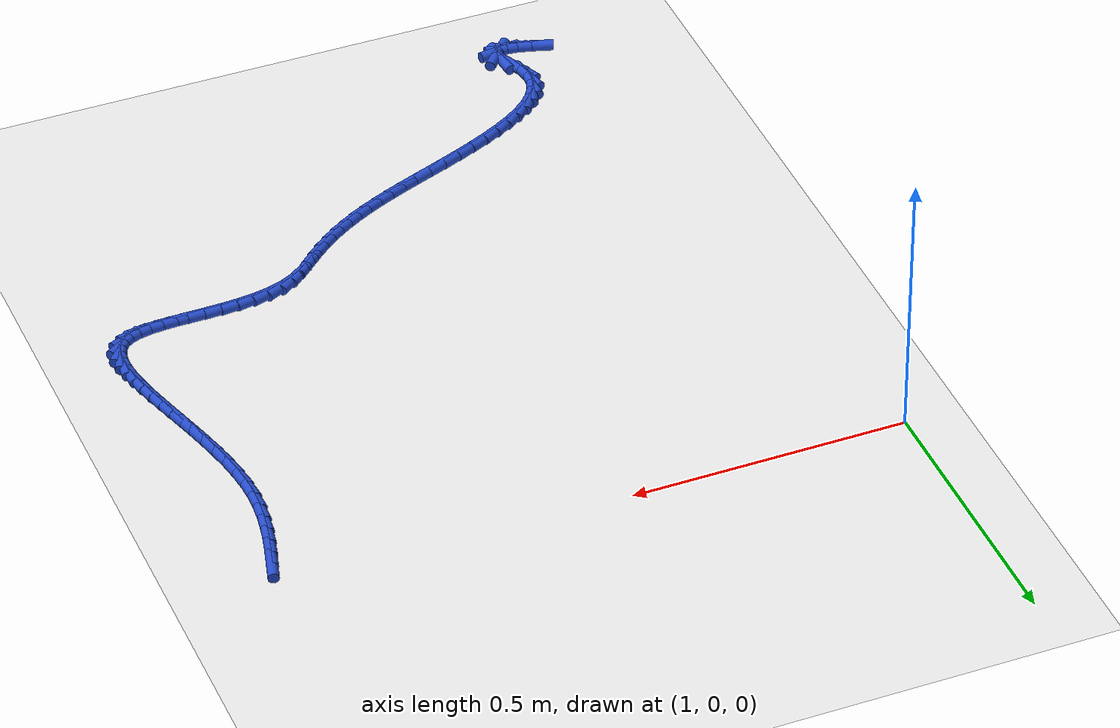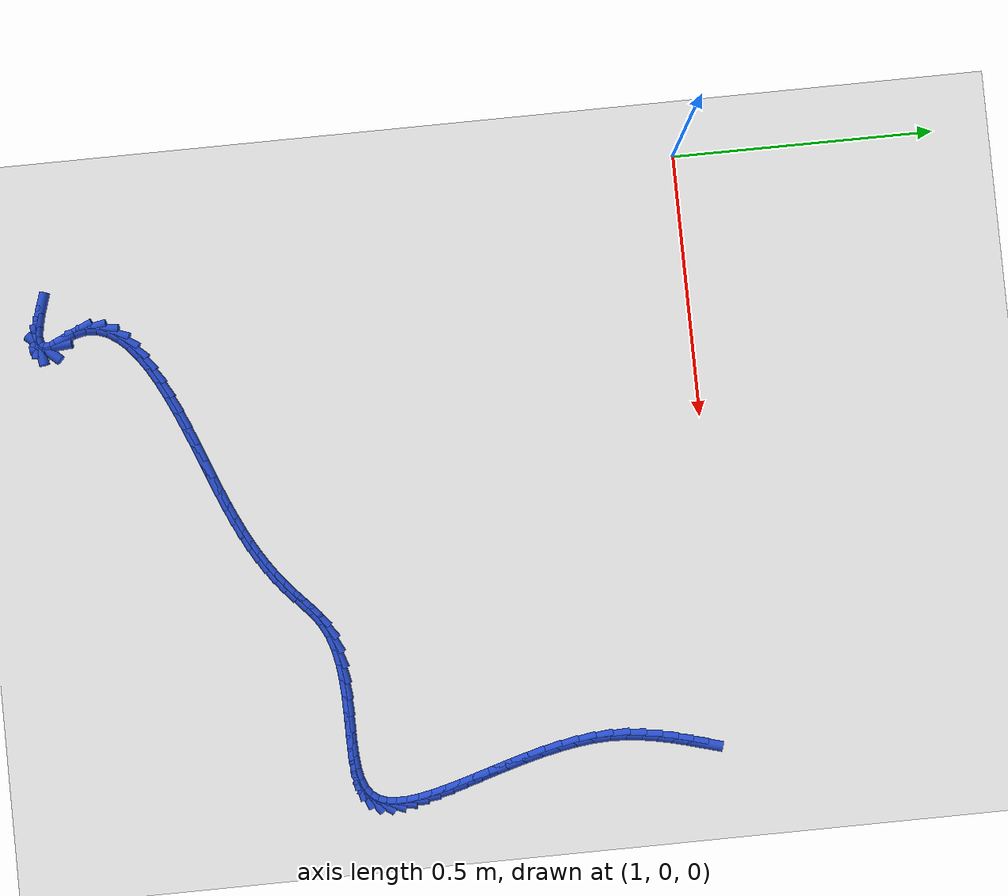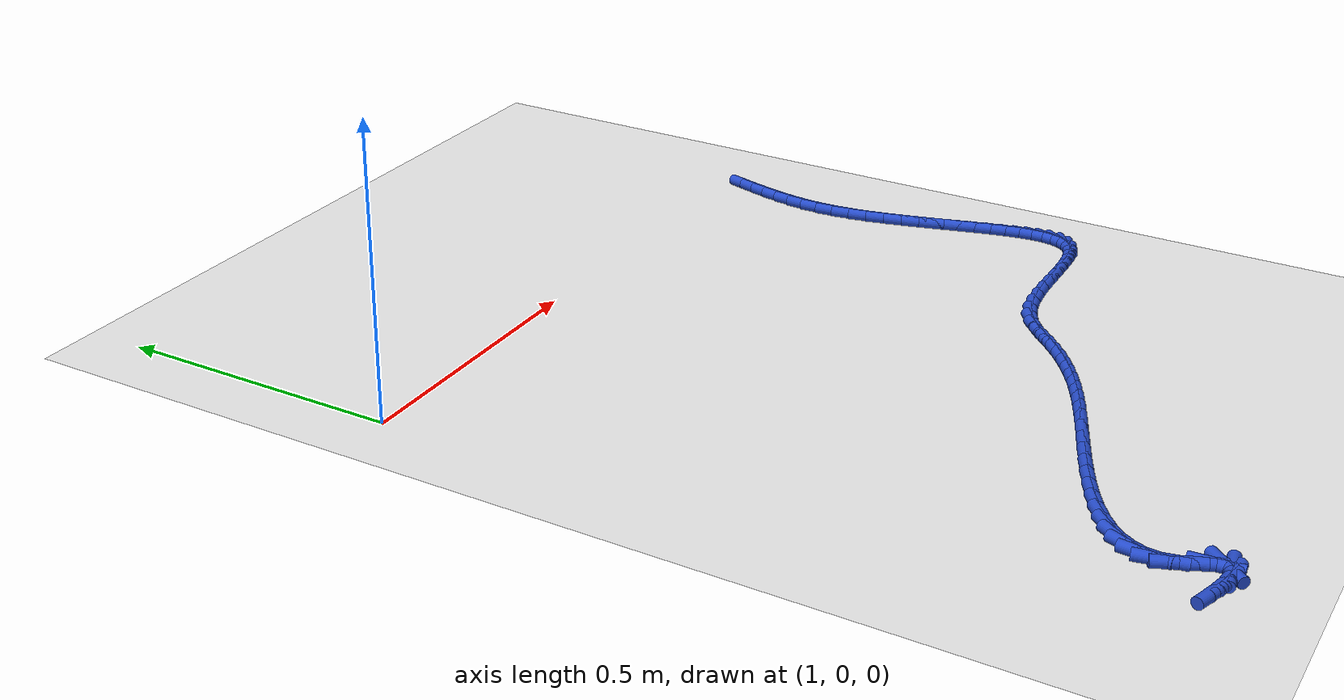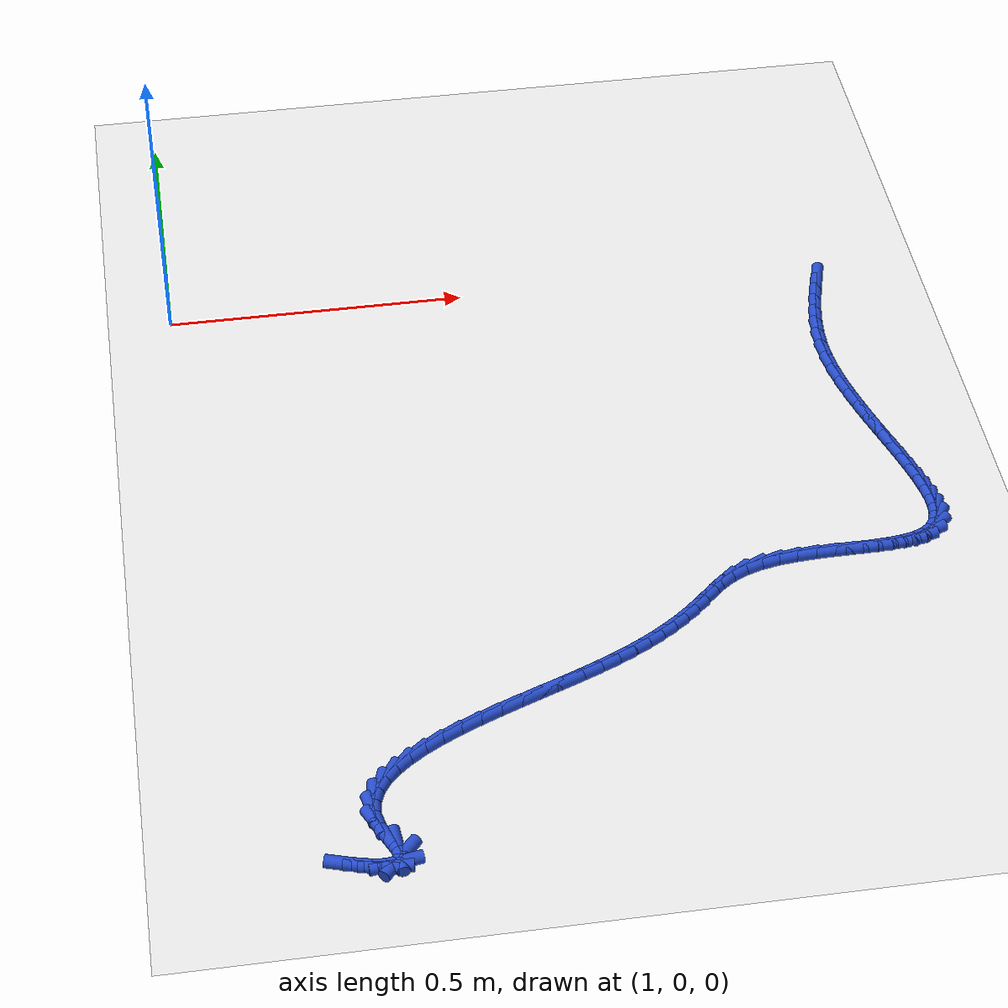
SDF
<sdf version="1.6">
 <world name="default">
  <model name="ground_plane">
   <static>1</static>
   <link name="link">
    <collision name="collision">
     <geometry><plane><normal>0 0 1</normal><size>100 100</size></plane></geometry>
     <surface><friction><ode><mu>100</mu><mu2>50</mu2></ode></friction></surface>
    </collision>
    <visual name="visual">
     <cast_shadows>0</cast_shadows>
     <geometry><plane><normal>0 0 1</normal><size>100 100</size></plane></geometry>
     <material>
      <script><uri>file://media/materials/scripts/gazebo.material</uri><name>Gazebo/WhiteGlow</name></script>
     </material>
    </visual>
   </link>
  </model>
  <model name="line">
   <link name="link_138">
    <pose>2.1176904225942463 -0.05944161366832139 0.01 0 1.57 1.296075081040833</pose>
    <collision name="collision">
     <geometry><cylinder><radius>0.01</radius><length>0.08</length></cylinder></geometry>
    </collision>
    <visual name="visual">
     <material>
      <script><name>Gazebo/Blue</name><uri>file://media/materials/scripts/gazebo.material</uri></script>
     </material>
     <geometry><cylinder><radius>0.01</radius><length>0.08</length></cylinder></geometry>
    </visual>
   </link>
   <link name="link_139">
    <pose>2.1100414255656452 -0.0865803740576701 0.01 0 1.57 1.320360415616173</pose>
    <collision name="collision">
     <geometry><cylinder><radius>0.01</radius><length>0.08</length></cylinder></geometry>
    </collision>
    <visual name="visual">
     <material>
      <script><name>Gazebo/Blue</name><uri>file://media/materials/scripts/gazebo.material</uri></script>
     </material>
     <geometry><cylinder><radius>0.01</radius><length>0.08</length></cylinder></geometry>
    </visual>
   </link>
   <link name="link_140">
    <pose>2.102938891639679 -0.11434565496982979 0.01 0 1.57 1.3570964571755493</pose>
    <collision name="collision">
     <geometry><cylinder><radius>0.01</radius><length>0.08</length></cylinder></geometry>
    </collision>
    <visual name="visual">
     <material>
      <script><name>Gazebo/Blue</name><uri>file://media/materials/scripts/gazebo.material</uri></script>
     </material>
     <geometry><cylinder><radius>0.01</radius><length>0.08</length></cylinder></geometry>
    </visual>
   </link>
   <link name="link_141">
    <pose>2.0967694082417 -0.1427746895620174 0.01 0 1.57 1.4058199411231167</pose>
    <collision name="collision">
     <geometry><cylinder><radius>0.01</radius><length>0.08</length></cylinder></geometry>
    </collision>
    <visual name="visual">
     <material>
      <script><name>Gazebo/Blue</name><uri>file://media/materials/scripts/gazebo.material</uri></script>
     </material>
     <geometry><cylinder><radius>0.01</radius><length>0.08</length></cylinder></geometry>
    </visual>
   </link>
   <link name="link_142">
    <pose>2.091919562797061 -0.17190471099145102 0.01 0 1.57 1.4659328105321343</pose>
    <collision name="collision">
     <geometry><cylinder><radius>0.01</radius><length>0.08</length></cylinder></geometry>
    </collision>
    <visual name="visual">
     <material>
      <script><name>Gazebo/Blue</name><uri>file://media/materials/scripts/gazebo.material</uri></script>
     </material>
     <geometry><cylinder><radius>0.01</radius><length>0.08</length></cylinder></geometry>
    </visual>
   </link>
   <link name="link_143">
    <pose>2.0887759427311114 -0.20177295241534834 0.01 0 1.57 1.5365186167617595</pose>
    <collision name="collision">
     <geometry><cylinder><radius>0.01</radius><length>0.08</length></cylinder></geometry>
    </collision>
    <visual name="visual">
     <material>
      <script><name>Gazebo/Blue</name><uri>file://media/materials/scripts/gazebo.material</uri></script>
     </material>
     <geometry><cylinder><radius>0.01</radius><length>0.08</length></cylinder></geometry>
    </visual>
   </link>
   <link name="link_144">
    <pose>2.087725135469206 -0.2324166469909274 0.01 0 1.57 -1.5265983619880603</pose>
    <collision name="collision">
     <geometry><cylinder><radius>0.01</radius><length>0.08</length></cylinder></geometry>
    </collision>
    <visual name="visual">
     <material>
      <script><name>Gazebo/Blue</name><uri>file://media/materials/scripts/gazebo.material</uri></script>
     </material>
     <geometry><cylinder><radius>0.01</radius><length>0.08</length></cylinder></geometry>
    </visual>
   </link>
   <link name="link_145">
    <pose>2.089115758651835 -0.263859668446599 0.01 0 1.57 -1.455170624955548</pose>
    <collision name="collision">
     <geometry><cylinder><radius>0.01</radius><length>0.08</length></cylinder></geometry>
    </collision>
    <visual name="visual">
     <material>
      <script><name>Gazebo/Blue</name><uri>file://media/materials/scripts/gazebo.material</uri></script>
     </material>
     <geometry><cylinder><radius>0.01</radius><length>0.08</length></cylinder></geometry>
    </visual>
   </link>
   <link name="link_146">
    <pose>2.0928448240829454 -0.29596699585165764 0.01 0 1.57 -1.3982941410885101</pose>
    <collision name="collision">
     <geometry><cylinder><radius>0.01</radius><length>0.08</length></cylinder></geometry>
    </collision>
    <visual name="visual">
     <material>
      <script><name>Gazebo/Blue</name><uri>file://media/materials/scripts/gazebo.material</uri></script>
     </material>
     <geometry><cylinder><radius>0.01</radius><length>0.08</length></cylinder></geometry>
    </visual>
   </link>
   <link name="link_147">
    <pose>2.098513063847713 -0.3284993641290458 0.01 0 1.57 -1.3540888738944732</pose>
    <collision name="collision">
     <geometry><cylinder><radius>0.01</radius><length>0.08</length></cylinder></geometry>
    </collision>
    <visual name="visual">
     <material>
      <script><name>Gazebo/Blue</name><uri>file://media/materials/scripts/gazebo.material</uri></script>
     </material>
     <geometry><cylinder><radius>0.01</radius><length>0.08</length></cylinder></geometry>
    </visual>
   </link>
   <link name="link_148">
    <pose>2.1057160461594213 -0.36121569132602255 0.01 0 1.57 -1.3209679672734795</pose>
    <collision name="collision">
     <geometry><cylinder><radius>0.01</radius><length>0.08</length></cylinder></geometry>
    </collision>
    <visual name="visual">
     <material>
      <script><name>Gazebo/Blue</name><uri>file://media/materials/scripts/gazebo.material</uri></script>
     </material>
     <geometry><cylinder><radius>0.01</radius><length>0.08</length></cylinder></geometry>
    </visual>
   </link>
   <link name="link_149">
    <pose>2.1140493392313555 -0.39387489548984617 0.01 0 1.57 -1.2978422901081454</pose>
    <collision name="collision">
     <geometry><cylinder><radius>0.01</radius><length>0.08</length></cylinder></geometry>
    </collision>
    <visual name="visual">
     <material>
      <script><name>Gazebo/Blue</name><uri>file://media/materials/scripts/gazebo.material</uri></script>
     </material>
     <geometry><cylinder><radius>0.01</radius><length>0.08</length></cylinder></geometry>
    </visual>
   </link>
   <link name="link_150">
    <pose>2.1231085112767993 -0.4262358946677752 0.01 0 1.57 -1.2841291633216976</pose>
    <collision name="collision">
     <geometry><cylinder><radius>0.01</radius><length>0.08</length></cylinder></geometry>
    </collision>
    <visual name="visual">
     <material>
      <script><name>Gazebo/Blue</name><uri>file://media/materials/scripts/gazebo.material</uri></script>
     </material>
     <geometry><cylinder><radius>0.01</radius><length>0.08</length></cylinder></geometry>
    </visual>
   </link>
   <link name="link_151">
    <pose>2.132489130509036 -0.4580576069070675 0.01 0 1.57 -1.279776070728795</pose>
    <collision name="collision">
     <geometry><cylinder><radius>0.01</radius><length>0.08</length></cylinder></geometry>
    </collision>
    <visual name="visual">
     <material>
      <script><name>Gazebo/Blue</name><uri>file://media/materials/scripts/gazebo.material</uri></script>
     </material>
     <geometry><cylinder><radius>0.01</radius><length>0.08</length></cylinder></geometry>
    </visual>
   </link>
   <link name="link_152">
    <pose>2.1417867651413514 -0.4890989502549815 0.01 0 1.57 -1.2853324727641589</pose>
    <collision name="collision">
     <geometry><cylinder><radius>0.01</radius><length>0.08</length></cylinder></geometry>
    </collision>
    <visual name="visual">
     <material>
      <script><name>Gazebo/Blue</name><uri>file://media/materials/scripts/gazebo.material</uri></script>
     </material>
     <geometry><cylinder><radius>0.01</radius><length>0.08</length></cylinder></geometry>
    </visual>
   </link>
   <link name="link_153">
    <pose>2.150596983387028 -0.5191188427587754 0.01 0 1.57 -1.3021037482972861</pose>
    <collision name="collision">
     <geometry><cylinder><radius>0.01</radius><length>0.08</length></cylinder></geometry>
    </collision>
    <visual name="visual">
     <material>
      <script><name>Gazebo/Blue</name><uri>file://media/materials/scripts/gazebo.material</uri></script>
     </material>
     <geometry><cylinder><radius>0.01</radius><length>0.08</length></cylinder></geometry>
    </visual>
   </link>
   <link name="link_154">
    <pose>2.158515353459351 -0.5478762024657077 0.01 0 1.57 -1.332436417775496</pose>
    <collision name="collision">
     <geometry><cylinder><radius>0.01</radius><length>0.08</length></cylinder></geometry>
    </collision>
    <visual name="visual">
     <material>
      <script><name>Gazebo/Blue</name><uri>file://media/materials/scripts/gazebo.material</uri></script>
     </material>
     <geometry><cylinder><radius>0.01</radius><length>0.08</length></cylinder></geometry>
    </visual>
   </link>
   <link name="link_155">
    <pose>2.165137443571605 -0.5751299474230371 0.01 0 1.57 -1.3802111051457162</pose>
    <collision name="collision">
     <geometry><cylinder><radius>0.01</radius><length>0.08</length></cylinder></geometry>
    </collision>
    <visual name="visual">
     <material>
      <script><name>Gazebo/Blue</name><uri>file://media/materials/scripts/gazebo.material</uri></script>
     </material>
     <geometry><cylinder><radius>0.01</radius><length>0.08</length></cylinder></geometry>
    </visual>
   </link>
   <link name="link_156">
    <pose>2.170058821937072 -0.6006389956780201 0.01 0 1.57 -1.4516422199378003</pose>
    <collision name="collision">
     <geometry><cylinder><radius>0.01</radius><length>0.08</length></cylinder></geometry>
    </collision>
    <visual name="visual">
     <material>
      <script><name>Gazebo/Blue</name><uri>file://media/materials/scripts/gazebo.material</uri></script>
     </material>
     <geometry><cylinder><radius>0.01</radius><length>0.08</length></cylinder></geometry>
    </visual>
   </link>
   <link name="link_157">
    <pose>2.172875056769038 -0.6241622652779164 0.01 0 1.57 -1.556397734083506</pose>
    <collision name="collision">
     <geometry><cylinder><radius>0.01</radius><length>0.08</length></cylinder></geometry>
    </collision>
    <visual name="visual">
     <material>
      <script><name>Gazebo/Blue</name><uri>file://media/materials/scripts/gazebo.material</uri></script>
     </material>
     <geometry><cylinder><radius>0.01</radius><length>0.08</length></cylinder></geometry>
    </visual>
   </link>
   <link name="link_158">
    <pose>2.1731817162807854 -0.6454586742699838 0.01 0 1.57 1.4331924368558617</pose>
    <collision name="collision">
     <geometry><cylinder><radius>0.01</radius><length>0.08</length></cylinder></geometry>
    </collision>
    <visual name="visual">
     <material>
      <script><name>Gazebo/Blue</name><uri>file://media/materials/scripts/gazebo.material</uri></script>
     </material>
     <geometry><cylinder><radius>0.01</radius><length>0.08</length></cylinder></geometry>
    </visual>
   </link>
   <link name="link_159">
    <pose>2.1705743686855996 -0.6642871407014804 0.01 0 1.57 1.2185137755395803</pose>
    <collision name="collision">
     <geometry><cylinder><radius>0.01</radius><length>0.08</length></cylinder></geometry>
    </collision>
    <visual name="visual">
     <material>
      <script><name>Gazebo/Blue</name><uri>file://media/materials/scripts/gazebo.material</uri></script>
     </material>
     <geometry><cylinder><radius>0.01</radius><length>0.08</length></cylinder></geometry>
    </visual>
   </link>
   <link name="link_160">
    <pose>2.1646485821967643 -0.6804065826196649 0.01 0 1.57 0.9384849078228632</pose>
    <collision name="collision">
     <geometry><cylinder><radius>0.01</radius><length>0.08</length></cylinder></geometry>
    </collision>
    <visual name="visual">
     <material>
      <script><name>Gazebo/Blue</name><uri>file://media/materials/scripts/gazebo.material</uri></script>
     </material>
     <geometry><cylinder><radius>0.01</radius><length>0.08</length></cylinder></geometry>
    </visual>
   </link>
   <link name="link_161">
    <pose>2.1549999250275644 -0.6935759180717953 0.01 0 1.57 0.6274017812539122</pose>
    <collision name="collision">
     <geometry><cylinder><radius>0.01</radius><length>0.08</length></cylinder></geometry>
    </collision>
    <visual name="visual">
     <material>
      <script><name>Gazebo/Blue</name><uri>file://media/materials/scripts/gazebo.material</uri></script>
     </material>
     <geometry><cylinder><radius>0.01</radius><length>0.08</length></cylinder></geometry>
    </visual>
   </link>
   <link name="link_162">
    <pose>2.141231231375344 -0.7035601870203383 0.01 0 1.57 0.36728076270080795</pose>
    <collision name="collision">
     <geometry><cylinder><radius>0.01</radius><length>0.08</length></cylinder></geometry>
    </collision>
    <visual name="visual">
     <material>
      <script><name>Gazebo/Blue</name><uri>file://media/materials/scripts/gazebo.material</uri></script>
     </material>
     <geometry><cylinder><radius>0.01</radius><length>0.08</length></cylinder></geometry>
    </visual>
   </link>
   <link name="link_163">
    <pose>2.123329141977856 -0.7104478035333102 0.01 0 1.57 0.2000987319147693</pose>
    <collision name="collision">
     <geometry><cylinder><radius>0.01</radius><length>0.08</length></cylinder></geometry>
    </collision>
    <visual name="visual">
     <material>
      <script><name>Gazebo/Blue</name><uri>file://media/materials/scripts/gazebo.material</uri></script>
     </material>
     <geometry><cylinder><radius>0.01</radius><length>0.08</length></cylinder></geometry>
    </visual>
   </link>
   <link name="link_164">
    <pose>2.1018470035892354 -0.7148046567393753 0.01 0 1.57 0.09902393995714362</pose>
    <collision name="collision">
     <geometry><cylinder><radius>0.01</radius><length>0.08</length></cylinder></geometry>
    </collision>
    <visual name="visual">
     <material>
      <script><name>Gazebo/Blue</name><uri>file://media/materials/scripts/gazebo.material</uri></script>
     </material>
     <geometry><cylinder><radius>0.01</radius><length>0.08</length></cylinder></geometry>
    </visual>
   </link>
   <link name="link_165">
    <pose>2.077383759303906 -0.717235052714813 0.01 0 1.57 0.04125904620325511</pose>
    <collision name="collision">
     <geometry><cylinder><radius>0.01</radius><length>0.08</length></cylinder></geometry>
    </collision>
    <visual name="visual">
     <material>
      <script><name>Gazebo/Blue</name><uri>file://media/materials/scripts/gazebo.material</uri></script>
     </material>
     <geometry><cylinder><radius>0.01</radius><length>0.08</length></cylinder></geometry>
    </visual>
   </link>
   <link name="link_166">
    <pose>2.0505383522162934 -0.7183432975359034 0.01 0 1.57 0.01363584600191849</pose>
    <collision name="collision">
     <geometry><cylinder><radius>0.01</radius><length>0.08</length></cylinder></geometry>
    </collision>
    <visual name="visual">
     <material>
      <script><name>Gazebo/Blue</name><uri>file://media/materials/scripts/gazebo.material</uri></script>
     </material>
     <geometry><cylinder><radius>0.01</radius><length>0.08</length></cylinder></geometry>
    </visual>
   </link>
   <link name="link_167">
    <pose>2.0219097254208225 -0.7187336972789269 0.01 0 1.57 0.009286340848019483</pose>
    <collision name="collision">
     <geometry><cylinder><radius>0.01</radius><length>0.08</length></cylinder></geometry>
    </collision>
    <visual name="visual">
     <material>
      <script><name>Gazebo/Blue</name><uri>file://media/materials/scripts/gazebo.material</uri></script>
     </material>
     <geometry><cylinder><radius>0.01</radius><length>0.08</length></cylinder></geometry>
    </visual>
   </link>
   <link name="link_168">
    <pose>1.992096822011916 -0.7190105580201628 0.01 0 1.57 0.02524701390734353</pose>
    <collision name="collision">
     <geometry><cylinder><radius>0.01</radius><length>0.08</length></cylinder></geometry>
    </collision>
    <visual name="visual">
     <material>
      <script><name>Gazebo/Blue</name><uri>file://media/materials/scripts/gazebo.material</uri></script>
     </material>
     <geometry><cylinder><radius>0.01</radius><length>0.08</length></cylinder></geometry>
    </visual>
   </link>
   <link name="link_169">
    <pose>1.9616985850840007 -0.7197781858358916 0.01 0 1.57 0.06122743362009928</pose>
    <collision name="collision">
     <geometry><cylinder><radius>0.01</radius><length>0.08</length></cylinder></geometry>
    </collision>
    <visual name="visual">
     <material>
      <script><name>Gazebo/Blue</name><uri>file://media/materials/scripts/gazebo.material</uri></script>
     </material>
     <geometry><cylinder><radius>0.01</radius><length>0.08</length></cylinder></geometry>
    </visual>
   </link>
   <link name="link_170">
    <pose>1.9313139577314995 -0.7216408868023929 0.01 0 1.57 0.11907896130277248</pose>
    <collision name="collision">
     <geometry><cylinder><radius>0.01</radius><length>0.08</length></cylinder></geometry>
    </collision>
    <visual name="visual">
     <material>
      <script><name>Gazebo/Blue</name><uri>file://media/materials/scripts/gazebo.material</uri></script>
     </material>
     <geometry><cylinder><radius>0.01</radius><length>0.08</length></cylinder></geometry>
    </visual>
   </link>
   <link name="link_171">
    <pose>1.901541883048838 -0.7252029669959469 0.01 0 1.57 0.20256303581576443</pose>
    <collision name="collision">
     <geometry><cylinder><radius>0.01</radius><length>0.08</length></cylinder></geometry>
    </collision>
    <visual name="visual">
     <material>
      <script><name>Gazebo/Blue</name><uri>file://media/materials/scripts/gazebo.material</uri></script>
     </material>
     <geometry><cylinder><radius>0.01</radius><length>0.08</length></cylinder></geometry>
    </visual>
   </link>
   <link name="link_172">
    <pose>1.8729813041304397 -0.7310687324928331 0.01 0 1.57 0.31693314269191636</pose>
    <collision name="collision">
     <geometry><cylinder><radius>0.01</radius><length>0.08</length></cylinder></geometry>
    </collision>
    <visual name="visual">
     <material>
      <script><name>Gazebo/Blue</name><uri>file://media/materials/scripts/gazebo.material</uri></script>
     </material>
     <geometry><cylinder><radius>0.01</radius><length>0.08</length></cylinder></geometry>
    </visual>
   </link>
   <link name="link_173">
    <pose>1.8462311640707296 -0.7398424893693323 0.01 0 1.57 0.4672895427397142</pose>
    <collision name="collision">
     <geometry><cylinder><radius>0.01</radius><length>0.08</length></cylinder></geometry>
    </collision>
    <visual name="visual">
     <material>
      <script><name>Gazebo/Blue</name><uri>file://media/materials/scripts/gazebo.material</uri></script>
     </material>
     <geometry><cylinder><radius>0.01</radius><length>0.08</length></cylinder></geometry>
    </visual>
   </link>
   <link name="link_174">
    <pose>1.8218880314862755 -0.7521250784160117 0.01 0 1.57 0.625141147270578</pose>
    <collision name="collision">
     <geometry><cylinder><radius>0.01</radius><length>0.08</length></cylinder></geometry>
    </collision>
    <visual name="visual">
     <material>
      <script><name>Gazebo/Blue</name><uri>file://media/materials/scripts/gazebo.material</uri></script>
     </material>
     <geometry><cylinder><radius>0.01</radius><length>0.08</length></cylinder></geometry>
    </visual>
   </link>
   <link name="link_175">
    <pose>1.8000938744270698 -0.767853901578064 0.01 0 1.57 0.7211664511863</pose>
    <collision name="collision">
     <geometry><cylinder><radius>0.01</radius><length>0.08</length></cylinder></geometry>
    </collision>
    <visual name="visual">
     <material>
      <script><name>Gazebo/Blue</name><uri>file://media/materials/scripts/gazebo.material</uri></script>
     </material>
     <geometry><cylinder><radius>0.01</radius><length>0.08</length></cylinder></geometry>
    </visual>
   </link>
   <link name="link_176">
    <pose>1.7799993599691972 -0.7855196675453198 0.01 0 1.57 0.7459290365380334</pose>
    <collision name="collision">
     <geometry><cylinder><radius>0.01</radius><length>0.08</length></cylinder></geometry>
    </collision>
    <visual name="visual">
     <material>
      <script><name>Gazebo/Blue</name><uri>file://media/materials/scripts/gazebo.material</uri></script>
     </material>
     <geometry><cylinder><radius>0.01</radius><length>0.08</length></cylinder></geometry>
    </visual>
   </link>
   <link name="link_177">
    <pose>1.7606245160115406 -0.8034224323469301 0.01 0 1.57 0.7103391944672504</pose>
    <collision name="collision">
     <geometry><cylinder><radius>0.01</radius><length>0.08</length></cylinder></geometry>
    </collision>
    <visual name="visual">
     <material>
      <script><name>Gazebo/Blue</name><uri>file://media/materials/scripts/gazebo.material</uri></script>
     </material>
     <geometry><cylinder><radius>0.01</radius><length>0.08</length></cylinder></geometry>
    </visual>
   </link>
   <link name="link_178">
    <pose>1.7411269533261495 -0.8201926491552828 0.01 0 1.57 0.6614531091417142</pose>
    <collision name="collision">
     <geometry><cylinder><radius>0.01</radius><length>0.08</length></cylinder></geometry>
    </collision>
    <visual name="visual">
     <material>
      <script><name>Gazebo/Blue</name><uri>file://media/materials/scripts/gazebo.material</uri></script>
     </material>
     <geometry><cylinder><radius>0.01</radius><length>0.08</length></cylinder></geometry>
    </visual>
   </link>
   <link name="link_179">
    <pose>1.721186553158512 -0.8357149728355404 0.01 0 1.57 0.6123880602948254</pose>
    <collision name="collision">
     <geometry><cylinder><radius>0.01</radius><length>0.08</length></cylinder></geometry>
    </collision>
    <visual name="visual">
     <material>
      <script><name>Gazebo/Blue</name><uri>file://media/materials/scripts/gazebo.material</uri></script>
     </material>
     <geometry><cylinder><radius>0.01</radius><length>0.08</length></cylinder></geometry>
    </visual>
   </link>
   <link name="link_180">
    <pose>1.7006071033399939 -0.8501716126000058 0.01 0 1.57 0.564919743177018</pose>
    <collision name="collision">
     <geometry><cylinder><radius>0.01</radius><length>0.08</length></cylinder></geometry>
    </collision>
    <visual name="visual">
     <material>
      <script><name>Gazebo/Blue</name><uri>file://media/materials/scripts/gazebo.material</uri></script>
     </material>
     <geometry><cylinder><radius>0.01</radius><length>0.08</length></cylinder></geometry>
    </visual>
   </link>
   <link name="link_181">
    <pose>1.6791923917019607 -0.8637447776609817 0.01 0 1.57 0.5206731401103074</pose>
    <collision name="collision">
     <geometry><cylinder><radius>0.01</radius><length>0.08</length></cylinder></geometry>
    </collision>
    <visual name="visual">
     <material>
      <script><name>Gazebo/Blue</name><uri>file://media/materials/scripts/gazebo.material</uri></script>
     </material>
     <geometry><cylinder><radius>0.01</radius><length>0.08</length></cylinder></geometry>
    </visual>
   </link>
   <link name="link_182">
    <pose>1.6567462060757805 -0.8766166772307704 0.01 0 1.57 0.4809290485074051</pose>
    <collision name="collision">
     <geometry><cylinder><radius>0.01</radius><length>0.08</length></cylinder></geometry>
    </collision>
    <visual name="visual">
     <material>
      <script><name>Gazebo/Blue</name><uri>file://media/materials/scripts/gazebo.material</uri></script>
     </material>
     <geometry><cylinder><radius>0.01</radius><length>0.08</length></cylinder></geometry>
    </visual>
   </link>
   <link name="link_183">
    <pose>1.6330723342928188 -0.8889695205216749 0.01 0 1.57 0.4465177730493362</pose>
    <collision name="collision">
     <geometry><cylinder><radius>0.01</radius><length>0.08</length></cylinder></geometry>
    </collision>
    <visual name="visual">
     <material>
      <script><name>Gazebo/Blue</name><uri>file://media/materials/scripts/gazebo.material</uri></script>
     </material>
     <geometry><cylinder><radius>0.01</radius><length>0.08</length></cylinder></geometry>
    </visual>
   </link>
   <link name="link_184">
    <pose>1.6079745641844416 -0.9009855167459978 0.01 0 1.57 0.4178099689067449</pose>
    <collision name="collision">
     <geometry><cylinder><radius>0.01</radius><length>0.08</length></cylinder></geometry>
    </collision>
    <visual name="visual">
     <material>
      <script><name>Gazebo/Blue</name><uri>file://media/materials/scripts/gazebo.material</uri></script>
     </material>
     <geometry><cylinder><radius>0.01</radius><length>0.08</length></cylinder></geometry>
    </visual>
   </link>
   <link name="link_185">
    <pose>1.581256683582015 -0.9128468751160413 0.01 0 1.57 0.39478931686978097</pose>
    <collision name="collision">
     <geometry><cylinder><radius>0.01</radius><length>0.08</length></cylinder></geometry>
    </collision>
    <visual name="visual">
     <material>
      <script><name>Gazebo/Blue</name><uri>file://media/materials/scripts/gazebo.material</uri></script>
     </material>
     <geometry><cylinder><radius>0.01</radius><length>0.08</length></cylinder></geometry>
    </visual>
   </link>
   <link name="link_186">
    <pose>1.5527233933548816 -0.9247356856727158 0.01 0 1.57 0.3787664182160089</pose>
    <collision name="collision">
     <geometry><cylinder><radius>0.01</radius><length>0.08</length></cylinder></geometry>
    </collision>
    <visual name="visual">
     <material>
      <script><name>Gazebo/Blue</name><uri>file://media/materials/scripts/gazebo.material</uri></script>
     </material>
     <geometry><cylinder><radius>0.01</radius><length>0.08</length></cylinder></geometry>
    </visual>
   </link>
   <link name="link_187">
    <pose>1.5223949062643871 -0.9368059094489604 0.01 0 1.57 0.3722110699294204</pose>
    <collision name="collision">
     <geometry><cylinder><radius>0.01</radius><length>0.08</length></cylinder></geometry>
    </collision>
    <visual name="visual">
     <material>
      <script><name>Gazebo/Blue</name><uri>file://media/materials/scripts/gazebo.material</uri></script>
     </material>
     <geometry><cylinder><radius>0.01</radius><length>0.08</length></cylinder></geometry>
    </visual>
   </link>
   <link name="link_188">
    <pose>1.4907835238698643 -0.9491472791439982 0.01 0 1.57 0.37429853846890987</pose>
    <collision name="collision">
     <geometry><cylinder><radius>0.01</radius><length>0.08</length></cylinder></geometry>
    </collision>
    <visual name="visual">
     <material>
      <script><name>Gazebo/Blue</name><uri>file://media/materials/scripts/gazebo.material</uri></script>
     </material>
     <geometry><cylinder><radius>0.01</radius><length>0.08</length></cylinder></geometry>
    </visual>
   </link>
   <link name="link_189">
    <pose>1.4584699102831924 -0.9618406046511321 0.01 0 1.57 0.38454022696541607</pose>
    <collision name="collision">
     <geometry><cylinder><radius>0.01</radius><length>0.08</length></cylinder></geometry>
    </collision>
    <visual name="visual">
     <material>
      <script><name>Gazebo/Blue</name><uri>file://media/materials/scripts/gazebo.material</uri></script>
     </material>
     <geometry><cylinder><radius>0.01</radius><length>0.08</length></cylinder></geometry>
    </visual>
   </link>
   <link name="link_190">
    <pose>1.426034729616253 -0.9749666958636672 0.01 0 1.57 0.40318987847303267</pose>
    <collision name="collision">
     <geometry><cylinder><radius>0.01</radius><length>0.08</length></cylinder></geometry>
    </collision>
    <visual name="visual">
     <material>
      <script><name>Gazebo/Blue</name><uri>file://media/materials/scripts/gazebo.material</uri></script>
     </material>
     <geometry><cylinder><radius>0.01</radius><length>0.08</length></cylinder></geometry>
    </visual>
   </link>
   <link name="link_191">
    <pose>1.394058645980928 -0.9886063626749064 0.01 0 1.57 0.4312279510003854</pose>
    <collision name="collision">
     <geometry><cylinder><radius>0.01</radius><length>0.08</length></cylinder></geometry>
    </collision>
    <visual name="visual">
     <material>
      <script><name>Gazebo/Blue</name><uri>file://media/materials/scripts/gazebo.material</uri></script>
     </material>
     <geometry><cylinder><radius>0.01</radius><length>0.08</length></cylinder></geometry>
    </visual>
   </link>
   <link name="link_192">
    <pose>1.3631223234890972 -1.0028404149781533 0.01 0 1.57 0.4704817563171592</pose>
    <collision name="collision">
     <geometry><cylinder><radius>0.01</radius><length>0.08</length></cylinder></geometry>
    </collision>
    <visual name="visual">
     <material>
      <script><name>Gazebo/Blue</name><uri>file://media/materials/scripts/gazebo.material</uri></script>
     </material>
     <geometry><cylinder><radius>0.01</radius><length>0.08</length></cylinder></geometry>
    </visual>
   </link>
   <link name="link_193">
    <pose>1.3338064262526426 -1.017749662666713 0.01 0 1.57 0.5238894723035037</pose>
    <collision name="collision">
     <geometry><cylinder><radius>0.01</radius><length>0.08</length></cylinder></geometry>
    </collision>
    <visual name="visual">
     <material>
      <script><name>Gazebo/Blue</name><uri>file://media/materials/scripts/gazebo.material</uri></script>
     </material>
     <geometry><cylinder><radius>0.01</radius><length>0.08</length></cylinder></geometry>
    </visual>
   </link>
   <link name="link_194">
    <pose>1.3066916183834438 -1.0334149156338883 0.01 0 1.57 0.5959276214838437</pose>
    <collision name="collision">
     <geometry><cylinder><radius>0.01</radius><length>0.08</length></cylinder></geometry>
    </collision>
    <visual name="visual">
     <material>
      <script><name>Gazebo/Blue</name><uri>file://media/materials/scripts/gazebo.material</uri></script>
     </material>
     <geometry><cylinder><radius>0.01</radius><length>0.08</length></cylinder></geometry>
    </visual>
   </link>
   <link name="link_195">
    <pose>1.2823585639933825 -1.0499169837729836 0.01 0 1.57 0.693164817176362</pose>
    <collision name="collision">
     <geometry><cylinder><radius>0.01</radius><length>0.08</length></cylinder></geometry>
    </collision>
    <visual name="visual">
     <material>
      <script><name>Gazebo/Blue</name><uri>file://media/materials/scripts/gazebo.material</uri></script>
     </material>
     <geometry><cylinder><radius>0.01</radius><length>0.08</length></cylinder></geometry>
    </visual>
   </link>
   <link name="link_196">
    <pose>1.2613879271943393 -1.0673366769773023 0.01 0 1.57 0.8246091531813194</pose>
    <collision name="collision">
     <geometry><cylinder><radius>0.01</radius><length>0.08</length></cylinder></geometry>
    </collision>
    <visual name="visual">
     <material>
      <script><name>Gazebo/Blue</name><uri>file://media/materials/scripts/gazebo.material</uri></script>
     </material>
     <geometry><cylinder><radius>0.01</radius><length>0.08</length></cylinder></geometry>
    </visual>
   </link>
   <link name="link_197">
    <pose>1.2443603720981962 -1.0857548051401493 0.01 0 1.57 1.0005562004250848</pose>
    <collision name="collision">
     <geometry><cylinder><radius>0.01</radius><length>0.08</length></cylinder></geometry>
    </collision>
    <visual name="visual">
     <material>
      <script><name>Gazebo/Blue</name><uri>file://media/materials/scripts/gazebo.material</uri></script>
     </material>
     <geometry><cylinder><radius>0.01</radius><length>0.08</length></cylinder></geometry>
    </visual>
   </link>
   <link name="link_198">
    <pose>1.2318565628168325 -1.1052521781548277 0.01 0 1.57 1.2268390597075869</pose>
    <collision name="collision">
     <geometry><cylinder><radius>0.01</radius><length>0.08</length></cylinder></geometry>
    </collision>
    <visual name="visual">
     <material>
      <script><name>Gazebo/Blue</name><uri>file://media/materials/scripts/gazebo.material</uri></script>
     </material>
     <geometry><cylinder><radius>0.01</radius><length>0.08</length></cylinder></geometry>
    </visual>
   </link>
   <link name="link_199">
    <pose>1.2244571634621302 -1.1259096059146423 0.01 0 1.57 1.4926698714897455</pose>
    <collision name="collision">
     <geometry><cylinder><radius>0.01</radius><length>0.08</length></cylinder></geometry>
    </collision>
    <visual name="visual">
     <material>
      <script><name>Gazebo/Blue</name><uri>file://media/materials/scripts/gazebo.material</uri></script>
     </material>
     <geometry><cylinder><radius>0.01</radius><length>0.08</length></cylinder></geometry>
    </visual>
   </link>
   <link name="link_200">
    <pose>1.22274283814597 -1.1478078983128954 0.01 0 1.57 -1.3772374490929653</pose>
    <collision name="collision">
     <geometry><cylinder><radius>0.01</radius><length>0.08</length></cylinder></geometry>
    </collision>
    <visual name="visual">
     <material>
      <script><name>Gazebo/Blue</name><uri>file://media/materials/scripts/gazebo.material</uri></script>
     </material>
     <geometry><cylinder><radius>0.01</radius><length>0.08</length></cylinder></geometry>
    </visual>
   </link>
   <link name="link_201">
    <pose>1.2272942509802327 -1.1710278652428916 0.01 0 1.57 -1.1473718760733844</pose>
    <collision name="collision">
     <geometry><cylinder><radius>0.01</radius><length>0.08</length></cylinder></geometry>
    </collision>
    <visual name="visual">
     <material>
      <script><name>Gazebo/Blue</name><uri>file://media/materials/scripts/gazebo.material</uri></script>
     </material>
     <geometry><cylinder><radius>0.01</radius><length>0.08</length></cylinder></geometry>
    </visual>
   </link>
   <link name="link_202">
    <pose>1.2382955479135294 -1.1954379673281073 0.01 0 1.57 -1.1403820404883713</pose>
    <collision name="collision">
     <geometry><cylinder><radius>0.01</radius><length>0.08</length></cylinder></geometry>
    </collision>
    <visual name="visual">
     <material>
      <script><name>Gazebo/Blue</name><uri>file://media/materials/scripts/gazebo.material</uri></script>
     </material>
     <geometry><cylinder><radius>0.01</radius><length>0.08</length></cylinder></geometry>
    </visual>
   </link>
   <link name="link_203">
    <pose>1.24805860366121 -1.2167025640906042 0.01 0 1.57 -1.4901833484687832</pose>
    <collision name="collision">
     <geometry><cylinder><radius>0.01</radius><length>0.08</length></cylinder></geometry>
    </collision>
    <visual name="visual">
     <material>
      <script><name>Gazebo/Blue</name><uri>file://media/materials/scripts/gazebo.material</uri></script>
     </material>
     <geometry><cylinder><radius>0.01</radius><length>0.08</length></cylinder></geometry>
    </visual>
   </link>
   <link name="link_204">
    <pose>1.2492082507763862 -1.2309329740131871 0.01 0 1.57 0.8438577495971167</pose>
    <collision name="collision">
     <geometry><cylinder><radius>0.01</radius><length>0.08</length></cylinder></geometry>
    </collision>
    <visual name="visual">
     <material>
      <script><name>Gazebo/Blue</name><uri>file://media/materials/scripts/gazebo.material</uri></script>
     </material>
     <geometry><cylinder><radius>0.01</radius><length>0.08</length></cylinder></geometry>
    </visual>
   </link>
   <link name="link_205">
    <pose>1.2422567759172187 -1.2387487192261466 0.01 0 1.57 0.15605746448512006</pose>
    <collision name="collision">
     <geometry><cylinder><radius>0.01</radius><length>0.08</length></cylinder></geometry>
    </collision>
    <visual name="visual">
     <material>
      <script><name>Gazebo/Blue</name><uri>file://media/materials/scripts/gazebo.material</uri></script>
     </material>
     <geometry><cylinder><radius>0.01</radius><length>0.08</length></cylinder></geometry>
    </visual>
   </link>
   <link name="link_206">
    <pose>1.22808360659499 -1.2409786803280558 0.01 0 1.57 -0.12255543926781579</pose>
    <collision name="collision">
     <geometry><cylinder><radius>0.01</radius><length>0.08</length></cylinder></geometry>
    </collision>
    <visual name="visual">
     <material>
      <script><name>Gazebo/Blue</name><uri>file://media/materials/scripts/gazebo.material</uri></script>
     </material>
     <geometry><cylinder><radius>0.01</radius><length>0.08</length></cylinder></geometry>
    </visual>
   </link>
   <link name="link_207">
    <pose>1.2075681703209828 -1.238451737917487 0.01 0 1.57 -0.24354333576786613</pose>
    <collision name="collision">
     <geometry><cylinder><radius>0.01</radius><length>0.08</length></cylinder></geometry>
    </collision>
    <visual name="visual">
     <material>
      <script><name>Gazebo/Blue</name><uri>file://media/materials/scripts/gazebo.material</uri></script>
     </material>
     <geometry><cylinder><radius>0.01</radius><length>0.08</length></cylinder></geometry>
    </visual>
   </link>
   <link name="link_208">
    <pose>1.1815898946064796 -1.2319967725930134 0.01 0 1.57 -0.30299159071003573</pose>
    <collision name="collision">
     <geometry><cylinder><radius>0.01</radius><length>0.08</length></cylinder></geometry>
    </collision>
    <visual name="visual">
     <material>
      <script><name>Gazebo/Blue</name><uri>file://media/materials/scripts/gazebo.material</uri></script>
     </material>
     <geometry><cylinder><radius>0.01</radius><length>0.08</length></cylinder></geometry>
    </visual>
   </link>
  </model>
 </world>
</sdf>
